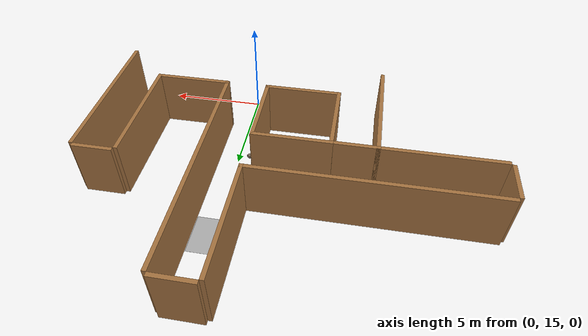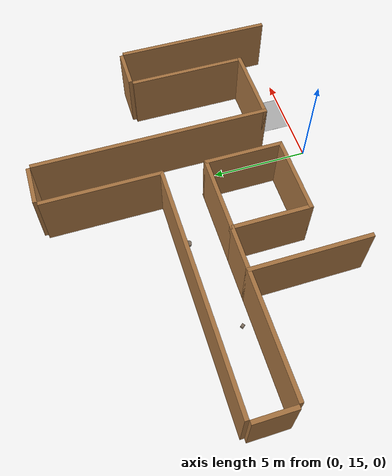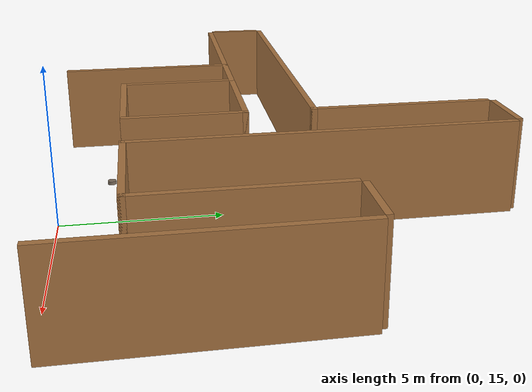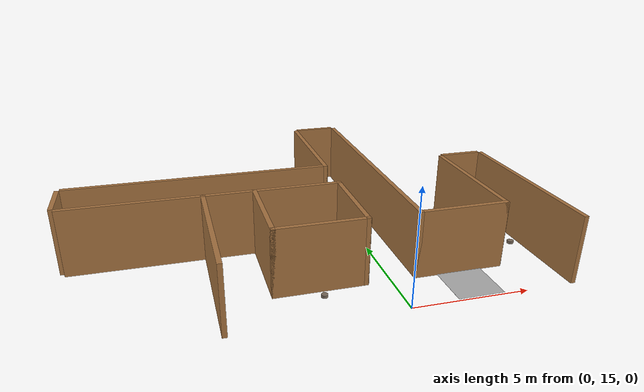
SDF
<sdf version="1.6">
 <world name="ideal_maze">
  <model name="smooth_floor_1">
   <static>true</static>
   <pose>3.000 16.000 0.053 0 0 0</pose>
   <link name="link">
    <visual name="visual">
     <geometry><box><size>2.000 1.920 0.003</size></box></geometry>
     <material>
      <ambient>0.62 0.62 0.62 1</ambient>
      <diffuse>0.68 0.68 0.68 1</diffuse>
      <specular>0.02 0.02 0.02 1</specular>
     </material>
    </visual>
   </link>
  </model>
  <model name="smooth_floor_2">
   <static>true</static>
   <pose>0.000 25.000 0.053 0 0 0</pose>
   <link name="link">
    <visual name="visual">
     <geometry><box><size>1.920 2.000 0.003</size></box></geometry>
     <material>
      <ambient>0.62 0.62 0.62 1</ambient>
      <diffuse>0.68 0.68 0.68 1</diffuse>
      <specular>0.02 0.02 0.02 1</specular>
     </material>
    </visual>
   </link>
  </model>
  <model name="wall_3">
   <static>true</static>
   <pose>1.1 23.000000000000004 1.5 0 0 0</pose>
   <link name="link">
    <collision name="collision"><geometry><box><size>0.2 12.0 3.0</size></box></geometry></collision>
    <visual name="visual">
     <geometry><box><size>0.2 12.0 3.0</size></box></geometry>
     <material>
      <ambient>0.55 0.35 0.15 1</ambient>
      <diffuse>0.65 0.45 0.25 1</diffuse>
      <specular>0.1 0.1 0.1 1</specular>
     </material>
    </visual>
   </link>
  </model>
  <model name="wall_6">
   <static>true</static>
   <pose>7.100000000000003 19.0 1.5 0 0 0</pose>
   <link name="link">
    <collision name="collision"><geometry><box><size>0.2 8.000000000000004 3.0</size></box></geometry></collision>
    <visual name="visual">
     <geometry><box><size>0.2 8.000000000000004 3.0</size></box></geometry>
     <material>
      <ambient>0.55 0.35 0.15 1</ambient>
      <diffuse>0.65 0.45 0.25 1</diffuse>
      <specular>0.1 0.1 0.1 1</specular>
     </material>
    </visual>
   </link>
  </model>
  <model name="wall_7">
   <static>true</static>
   <pose>-4.899999999999999 19.000000000000004 1.5 0 0 0</pose>
   <link name="link">
    <collision name="collision"><geometry><box><size>0.2 4.0 3.0</size></box></geometry></collision>
    <visual name="visual">
     <geometry><box><size>0.2 4.0 3.0</size></box></geometry>
     <material>
      <ambient>0.55 0.35 0.15 1</ambient>
      <diffuse>0.65 0.45 0.25 1</diffuse>
      <specular>0.1 0.1 0.1 1</specular>
     </material>
    </visual>
   </link>
  </model>
  <model name="wall_9">
   <static>true</static>
   <pose>-1.0999999999999983 19.000000000000004 1.5 0 0 0</pose>
   <link name="link">
    <collision name="collision"><geometry><box><size>0.2 4.0 3.0</size></box></geometry></collision>
    <visual name="visual">
     <geometry><box><size>0.2 4.0 3.0</size></box></geometry>
     <material>
      <ambient>0.55 0.35 0.15 1</ambient>
      <diffuse>0.65 0.45 0.25 1</diffuse>
      <specular>0.1 0.1 0.1 1</specular>
     </material>
    </visual>
   </link>
  </model>
  <model name="wall_10">
   <static>true</static>
   <pose>-1.0999999999999983 26.000000000000004 1.5 0 0 0</pose>
   <link name="link">
    <collision name="collision"><geometry><box><size>0.2 6.0 3.0</size></box></geometry></collision>
    <visual name="visual">
     <geometry><box><size>0.2 6.0 3.0</size></box></geometry>
     <material>
      <ambient>0.55 0.35 0.15 1</ambient>
      <diffuse>0.65 0.45 0.25 1</diffuse>
      <specular>0.1 0.1 0.1 1</specular>
     </material>
    </visual>
   </link>
  </model>
  <model name="wall_11">
   <static>true</static>
   <pose>4.900000000000004 20.000000000000004 1.5 0 0 0</pose>
   <link name="link">
    <collision name="collision"><geometry><box><size>0.2 6.0 3.0</size></box></geometry></collision>
    <visual name="visual">
     <geometry><box><size>0.2 6.0 3.0</size></box></geometry>
     <material>
      <ambient>0.55 0.35 0.15 1</ambient>
      <diffuse>0.65 0.45 0.25 1</diffuse>
      <specular>0.1 0.1 0.1 1</specular>
     </material>
    </visual>
   </link>
  </model>
  <model name="wall_12">
   <static>true</static>
   <pose>-7.099999999999998 18.0 1.5 0 0 0</pose>
   <link name="link">
    <collision name="collision">
     <geometry><box><size>0.2 6.0000000000000036 3.0</size></box></geometry>
    </collision>
    <visual name="visual">
     <geometry><box><size>0.2 6.0000000000000036 3.0</size></box></geometry>
     <material>
      <ambient>0.55 0.35 0.15 1</ambient>
      <diffuse>0.65 0.45 0.25 1</diffuse>
      <specular>0.1 0.1 0.1 1</specular>
     </material>
    </visual>
   </link>
  </model>
  <model name="wall_13">
   <static>true</static>
   <pose>-13.1 22.000000000000004 1.5 0 0 0</pose>
   <link name="link">
    <collision name="collision"><geometry><box><size>0.2 2.0 3.0</size></box></geometry></collision>
    <visual name="visual">
     <geometry><box><size>0.2 2.0 3.0</size></box></geometry>
     <material>
      <ambient>0.55 0.35 0.15 1</ambient>
      <diffuse>0.65 0.45 0.25 1</diffuse>
      <specular>0.1 0.1 0.1 1</specular>
     </material>
    </visual>
   </link>
  </model>
  <model name="wall_16">
   <static>true</static>
   <pose>-6.999999999999999 23.100000000000005 1.5 0 0 0</pose>
   <link name="link">
    <collision name="collision">
     <geometry><box><size>12.000000000000002 0.2 3.0</size></box></geometry>
    </collision>
    <visual name="visual">
     <geometry><box><size>12.000000000000002 0.2 3.0</size></box></geometry>
     <material>
      <ambient>0.55 0.35 0.15 1</ambient>
      <diffuse>0.65 0.45 0.25 1</diffuse>
      <specular>0.1 0.1 0.1 1</specular>
     </material>
    </visual>
   </link>
  </model>
  <model name="wall_17">
   <static>true</static>
   <pose>6.0000000000000036 23.100000000000005 1.5 0 0 0</pose>
   <link name="link">
    <collision name="collision"><geometry><box><size>2.0 0.2 3.0</size></box></geometry></collision>
    <visual name="visual">
     <geometry><box><size>2.0 0.2 3.0</size></box></geometry>
     <material>
      <ambient>0.55 0.35 0.15 1</ambient>
      <diffuse>0.65 0.45 0.25 1</diffuse>
      <specular>0.1 0.1 0.1 1</specular>
     </material>
    </visual>
   </link>
  </model>
  <model name="wall_18">
   <static>true</static>
   <pose>-2.9999999999999982 17.100000000000005 1.5 0 0 0</pose>
   <link name="link">
    <collision name="collision"><geometry><box><size>4.0 0.2 3.0</size></box></geometry></collision>
    <visual name="visual">
     <geometry><box><size>4.0 0.2 3.0</size></box></geometry>
     <material>
      <ambient>0.55 0.35 0.15 1</ambient>
      <diffuse>0.65 0.45 0.25 1</diffuse>
      <specular>0.1 0.1 0.1 1</specular>
     </material>
    </visual>
   </link>
  </model>
  <model name="wall_19">
   <static>true</static>
   <pose>3.0000000000000018 17.100000000000005 1.5 0 0 0</pose>
   <link name="link">
    <collision name="collision">
     <geometry><box><size>4.0000000000000036 0.2 3.0</size></box></geometry>
    </collision>
    <visual name="visual">
     <geometry><box><size>4.0000000000000036 0.2 3.0</size></box></geometry>
     <material>
      <ambient>0.55 0.35 0.15 1</ambient>
      <diffuse>0.65 0.45 0.25 1</diffuse>
      <specular>0.1 0.1 0.1 1</specular>
     </material>
    </visual>
   </link>
  </model>
  <model name="wall_20">
   <static>true</static>
   <pose>8.881784197001252e-16 29.100000000000005 1.5 0 0 0</pose>
   <link name="link">
    <collision name="collision">
     <geometry><box><size>1.9999999999999982 0.2 3.0</size></box></geometry>
    </collision>
    <visual name="visual">
     <geometry><box><size>1.9999999999999982 0.2 3.0</size></box></geometry>
     <material>
      <ambient>0.55 0.35 0.15 1</ambient>
      <diffuse>0.65 0.45 0.25 1</diffuse>
      <specular>0.1 0.1 0.1 1</specular>
     </material>
    </visual>
   </link>
  </model>
  <model name="wall_21">
   <static>true</static>
   <pose>-10.0 20.900000000000002 1.5 0 0 0</pose>
   <link name="link">
    <collision name="collision"><geometry><box><size>6.000000000000002 0.2 3.0</size></box></geometry></collision>
    <visual name="visual">
     <geometry><box><size>6.000000000000002 0.2 3.0</size></box></geometry>
     <material>
      <ambient>0.55 0.35 0.15 1</ambient>
      <diffuse>0.65 0.45 0.25 1</diffuse>
      <specular>0.1 0.1 0.1 1</specular>
     </material>
    </visual>
   </link>
  </model>
  <model name="wall_22">
   <static>true</static>
   <pose>-2.9999999999999982 20.900000000000002 1.5 0 0 0</pose>
   <link name="link">
    <collision name="collision"><geometry><box><size>4.0 0.2 3.0</size></box></geometry></collision>
    <visual name="visual">
     <geometry><box><size>4.0 0.2 3.0</size></box></geometry>
     <material>
      <ambient>0.55 0.35 0.15 1</ambient>
      <diffuse>0.65 0.45 0.25 1</diffuse>
      <specular>0.1 0.1 0.1 1</specular>
     </material>
    </visual>
   </link>
  </model>
  <model name="loop_break_e1">
   <static>true</static>
   <pose>-6.0 20.9 1.5 0 0 0</pose>
   <link name="link">
    <collision name="collision"><geometry><box><size>2.4 0.2 3.0</size></box></geometry></collision>
    <visual name="visual">
     <geometry><box><size>2.4 0.2 3.0</size></box></geometry>
     <material>
      <ambient>0.55 0.35 0.15 1</ambient>
      <diffuse>0.65 0.45 0.25 1</diffuse>
      <specular>0.1 0.1 0.1 1</specular>
     </material>
    </visual>
   </link>
  </model>
  <model name="rock_2">
   <static>true</static>
   <pose>-3.000 16.550 0.110 0 0 0.450</pose>
   <link name="link">
    <collision name="collision">
     <geometry><cylinder><radius>0.140</radius><length>0.120</length></cylinder></geometry>
    </collision>
    <visual name="visual">
     <geometry><cylinder><radius>0.140</radius><length>0.120</length></cylinder></geometry>
     <material>
      <ambient>0.38 0.34 0.30 1</ambient>
      <diffuse>0.48 0.42 0.36 1</diffuse>
      <specular>0.08 0.08 0.08 1</specular>
     </material>
    </visual>
   </link>
  </model>
  <model name="rock_3">
   <static>true</static>
   <pose>-0.550 19.600 0.125 0 0 -0.600</pose>
   <link name="link">
    <collision name="collision"><geometry><box><size>0.200 0.170 0.150</size></box></geometry></collision>
    <visual name="visual">
     <geometry><box><size>0.200 0.170 0.150</size></box></geometry>
     <material>
      <ambient>0.38 0.34 0.30 1</ambient>
      <diffuse>0.48 0.42 0.36 1</diffuse>
      <specular>0.08 0.08 0.08 1</specular>
     </material>
    </visual>
   </link>
  </model>
  <model name="rock_4">
   <static>true</static>
   <pose>-3.600 22.550 0.115 0 0 0.750</pose>
   <link name="link">
    <collision name="collision">
     <geometry><cylinder><radius>0.150</radius><length>0.130</length></cylinder></geometry>
    </collision>
    <visual name="visual">
     <geometry><cylinder><radius>0.150</radius><length>0.130</length></cylinder></geometry>
     <material>
      <ambient>0.38 0.34 0.30 1</ambient>
      <diffuse>0.48 0.42 0.36 1</diffuse>
      <specular>0.08 0.08 0.08 1</specular>
     </material>
    </visual>
   </link>
  </model>
  <model name="rock_5">
   <static>true</static>
   <pose>-8.400 21.450 0.120 0 0 -0.900</pose>
   <link name="link">
    <collision name="collision"><geometry><box><size>0.170 0.145 0.140</size></box></geometry></collision>
    <visual name="visual">
     <geometry><box><size>0.170 0.145 0.140</size></box></geometry>
     <material>
      <ambient>0.38 0.34 0.30 1</ambient>
      <diffuse>0.48 0.42 0.36 1</diffuse>
      <specular>0.08 0.08 0.08 1</specular>
     </material>
    </visual>
   </link>
  </model>
  <model name="rock_6">
   <static>true</static>
   <pose>6.550 18.700 0.110 0 0 1.050</pose>
   <link name="link">
    <collision name="collision">
     <geometry><cylinder><radius>0.150</radius><length>0.120</length></cylinder></geometry>
    </collision>
    <visual name="visual">
     <geometry><cylinder><radius>0.150</radius><length>0.120</length></cylinder></geometry>
     <material>
      <ambient>0.38 0.34 0.30 1</ambient>
      <diffuse>0.48 0.42 0.36 1</diffuse>
      <specular>0.08 0.08 0.08 1</specular>
     </material>
    </visual>
   </link>
  </model>
 </world>
</sdf>
